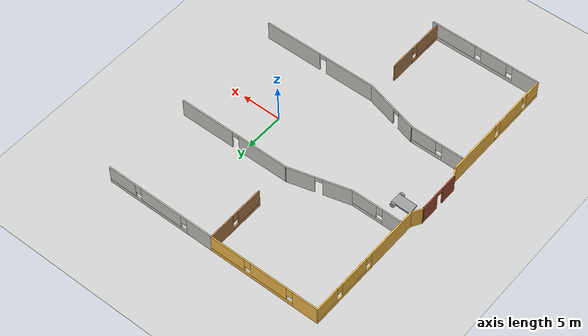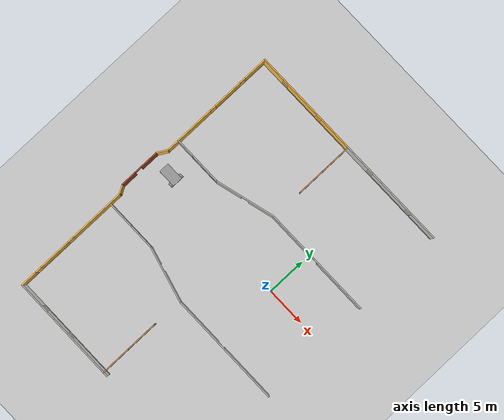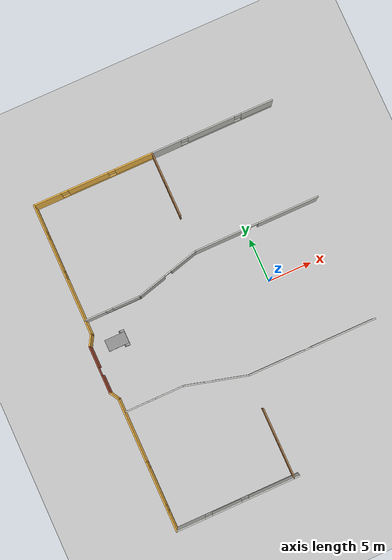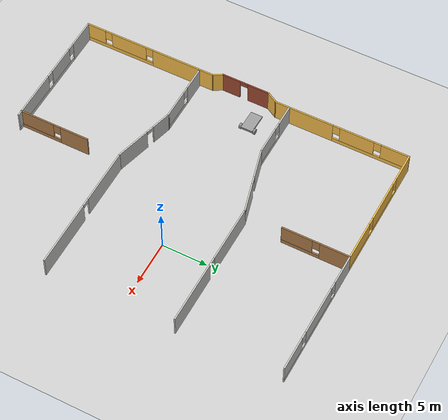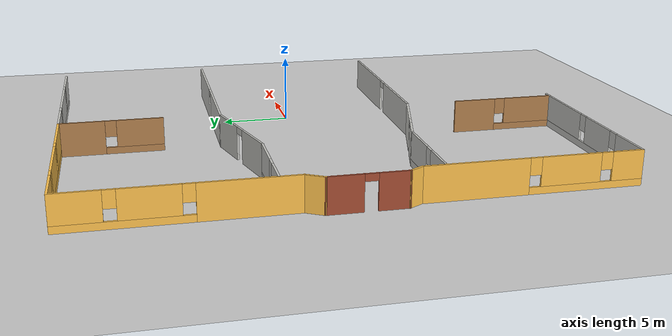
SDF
<sdf version="1.6">
 <world name="default">
  <model name="ground_plane">
   <static>1</static>
   <link name="link">
    <collision name="collision">
     <geometry><plane><normal>0 0 1</normal><size>100 100</size></plane></geometry>
     <surface><friction><ode><mu>100</mu><mu2>50</mu2></ode></friction></surface>
    </collision>
    <visual name="visual">
     <cast_shadows>0</cast_shadows>
     <geometry><plane><normal>0 0 1</normal><size>100 100</size></plane></geometry>
     <material>
      <script><uri>file://media/materials/scripts/gazebo.material</uri><name>Gazebo/Grey</name></script>
     </material>
    </visual>
   </link>
  </model>
  <model name="model">
   <pose>1.3797 -1.1711 0 0 -0 0</pose>
   <link name="Wall_22">
    <pose>-21.3175 -11.3683 0 0 0 -1.5708</pose>
    <visual name="Wall_22_Visual_0">
     <pose>-3.98783 0 1.25 0 -0 0</pose>
     <geometry><box><size>7.27435 0.15 2.5</size></box></geometry>
     <material>
      <script><uri>file://media/materials/scripts/gazebo.material</uri><name>Gazebo/Grey</name></script>
      <ambient>1 0.764706 0.305882 1</ambient>
     </material>
     <meta><layer>0</layer></meta>
    </visual>
    <collision name="Wall_22_Collision_0">
     <geometry><box><size>7.27435 0.15 2.5</size></box></geometry>
     <pose>-3.98783 0 1.25 0 -0 0</pose>
    </collision>
    <visual name="Wall_22_Visual_1">
     <pose>3.63717 0 0.25 0 -0 0</pose>
     <geometry><box><size>7.97565 0.15 0.5</size></box></geometry>
     <material>
      <script><uri>file://media/materials/scripts/gazebo.material</uri><name>Gazebo/Grey</name></script>
      <ambient>1 0.764706 0.305882 1</ambient>
     </material>
     <meta><layer>0</layer></meta>
    </visual>
    <collision name="Wall_22_Collision_1">
     <geometry><box><size>7.97565 0.15 0.5</size></box></geometry>
     <pose>3.63717 0 0.25 0 -0 0</pose>
    </collision>
    <visual name="Wall_22_Visual_2">
     <pose>2.53115 0 1.5 0 -0 0</pose>
     <geometry><box><size>4.16361 0.15 2</size></box></geometry>
     <material>
      <script><uri>file://media/materials/scripts/gazebo.material</uri><name>Gazebo/Grey</name></script>
      <ambient>1 0.764706 0.305882 1</ambient>
     </material>
     <meta><layer>0</layer></meta>
    </visual>
    <collision name="Wall_22_Collision_2">
     <geometry><box><size>4.16361 0.15 2</size></box></geometry>
     <pose>2.53115 0 1.5 0 -0 0</pose>
    </collision>
    <visual name="Wall_22_Visual_3">
     <pose>6.51898 0 1.5 0 -0 0</pose>
     <geometry><box><size>2.21204 0.15 2</size></box></geometry>
     <material>
      <script><uri>file://media/materials/scripts/gazebo.material</uri><name>Gazebo/Grey</name></script>
      <ambient>1 0.764706 0.305882 1</ambient>
     </material>
     <meta><layer>0</layer></meta>
    </visual>
    <collision name="Wall_22_Collision_3">
     <geometry><box><size>2.21204 0.15 2</size></box></geometry>
     <pose>6.51898 0 1.5 0 -0 0</pose>
    </collision>
    <visual name="Wall_22_Visual_4">
     <pose>0.049349 0 1.9 0 -0 0</pose>
     <geometry><box><size>0.8 0.15 1.2</size></box></geometry>
     <material>
      <script><uri>file://media/materials/scripts/gazebo.material</uri><name>Gazebo/Grey</name></script>
      <ambient>1 0.764706 0.305882 1</ambient>
     </material>
     <meta><layer>0</layer></meta>
    </visual>
    <collision name="Wall_22_Collision_4">
     <geometry><box><size>0.8 0.15 1.2</size></box></geometry>
     <pose>0.049349 0 1.9 0 -0 0</pose>
    </collision>
    <visual name="Wall_22_Visual_5">
     <pose>5.01296 0 1.9 0 -0 0</pose>
     <geometry><box><size>0.8 0.15 1.2</size></box></geometry>
     <material>
      <script><uri>file://media/materials/scripts/gazebo.material</uri><name>Gazebo/Grey</name></script>
      <ambient>1 0.764706 0.305882 1</ambient>
     </material>
     <meta><layer>0</layer></meta>
    </visual>
    <collision name="Wall_22_Collision_5">
     <geometry><box><size>0.8 0.15 1.2</size></box></geometry>
     <pose>5.01296 0 1.9 0 -0 0</pose>
    </collision>
   </link>
   <link name="Wall_23">
    <pose>-14.2675 -18.9183 0 0 -0 0</pose>
    <visual name="Wall_23_Visual_0">
     <pose>-5.44036 0 1.25 0 -0 0</pose>
     <geometry><box><size>3.36928 0.15 2.5</size></box></geometry>
     <material>
      <script><uri>file://media/materials/scripts/gazebo.material</uri><name>Gazebo/CeilingTiled</name></script>
      <ambient>1 0.764706 0.305882 1</ambient>
     </material>
     <meta><layer>0</layer></meta>
    </visual>
    <collision name="Wall_23_Collision_0">
     <geometry><box><size>3.36928 0.15 2.5</size></box></geometry>
     <pose>-5.44036 0 1.25 0 -0 0</pose>
    </collision>
    <visual name="Wall_23_Visual_1">
     <pose>1.68464 0 0.25 0 -0 0</pose>
     <geometry><box><size>10.8807 0.15 0.5</size></box></geometry>
     <material>
      <script><uri>file://media/materials/scripts/gazebo.material</uri><name>Gazebo/CeilingTiled</name></script>
      <ambient>1 0.764706 0.305882 1</ambient>
     </material>
     <meta><layer>0</layer></meta>
    </visual>
    <collision name="Wall_23_Collision_1">
     <geometry><box><size>10.8807 0.15 0.5</size></box></geometry>
     <pose>1.68464 0 0.25 0 -0 0</pose>
    </collision>
    <visual name="Wall_23_Visual_2">
     <pose>-1.24407 0 1.5 0 -0 0</pose>
     <geometry><box><size>3.42331 0.15 2</size></box></geometry>
     <material>
      <script><uri>file://media/materials/scripts/gazebo.material</uri><name>Gazebo/CeilingTiled</name></script>
      <ambient>1 0.764706 0.305882 1</ambient>
     </material>
     <meta><layer>0</layer></meta>
    </visual>
    <collision name="Wall_23_Collision_2">
     <geometry><box><size>3.42331 0.15 2</size></box></geometry>
     <pose>-1.24407 0 1.5 0 -0 0</pose>
    </collision>
    <visual name="Wall_23_Visual_3">
     <pose>4.19629 0 1.5 0 -0 0</pose>
     <geometry><box><size>5.85741 0.15 2</size></box></geometry>
     <material>
      <script><uri>file://media/materials/scripts/gazebo.material</uri><name>Gazebo/CeilingTiled</name></script>
      <ambient>1 0.764706 0.305882 1</ambient>
     </material>
     <meta><layer>0</layer></meta>
    </visual>
    <collision name="Wall_23_Collision_3">
     <geometry><box><size>5.85741 0.15 2</size></box></geometry>
     <pose>4.19629 0 1.5 0 -0 0</pose>
    </collision>
    <visual name="Wall_23_Visual_4">
     <pose>-3.35572 0 1.9 0 -0 0</pose>
     <geometry><box><size>0.8 0.15 1.2</size></box></geometry>
     <material>
      <script><uri>file://media/materials/scripts/gazebo.material</uri><name>Gazebo/CeilingTiled</name></script>
      <ambient>1 0.764706 0.305882 1</ambient>
     </material>
     <meta><layer>0</layer></meta>
    </visual>
    <collision name="Wall_23_Collision_4">
     <geometry><box><size>0.8 0.15 1.2</size></box></geometry>
     <pose>-3.35572 0 1.9 0 -0 0</pose>
    </collision>
    <visual name="Wall_23_Visual_5">
     <pose>0.867585 0 1.9 0 -0 0</pose>
     <geometry><box><size>0.8 0.15 1.2</size></box></geometry>
     <material>
      <script><uri>file://media/materials/scripts/gazebo.material</uri><name>Gazebo/CeilingTiled</name></script>
      <ambient>1 0.764706 0.305882 1</ambient>
     </material>
     <meta><layer>0</layer></meta>
    </visual>
    <collision name="Wall_23_Collision_5">
     <geometry><box><size>0.8 0.15 1.2</size></box></geometry>
     <pose>0.867585 0 1.9 0 -0 0</pose>
    </collision>
   </link>
   <link name="Wall_36">
    <collision name="Wall_36_Collision">
     <geometry><box><size>1.25 0.15 2.5</size></box></geometry>
     <pose>0 0 1.25 0 -0 0</pose>
    </collision>
    <visual name="Wall_36_Visual">
     <pose>0 0 1.25 0 -0 0</pose>
     <geometry><box><size>1.25 0.15 2.5</size></box></geometry>
     <material>
      <script><uri>file://media/materials/scripts/gazebo.material</uri><name>Gazebo/Grey</name></script>
      <ambient>1 0.764706 0.305882 1</ambient>
     </material>
     <meta><layer>0</layer></meta>
    </visual>
    <pose>-21.5925 -3.34197 0 0 -0 2.0944</pose>
   </link>
   <link name="Wall_37">
    <pose>-21.8675 -0.190651 0 0 -0 1.5708</pose>
    <visual name="Wall_37_Visual_0">
     <pose>-1.69498 0 1.25 0 -0 0</pose>
     <geometry><box><size>2.11003 0.15 2.5</size></box></geometry>
     <material>
      <script><uri>file://media/materials/scripts/gazebo.material</uri><name>Gazebo/Bricks</name></script>
      <ambient>1 1 1 1</ambient>
     </material>
     <meta><layer>0</layer></meta>
    </visual>
    <collision name="Wall_37_Collision_0">
     <geometry><box><size>2.11003 0.15 2.5</size></box></geometry>
     <pose>-1.69498 0 1.25 0 -0 0</pose>
    </collision>
    <visual name="Wall_37_Visual_1">
     <pose>1.50502 0 1.25 0 -0 0</pose>
     <geometry><box><size>2.48997 0.15 2.5</size></box></geometry>
     <material>
      <script><uri>file://media/materials/scripts/gazebo.material</uri><name>Gazebo/Bricks</name></script>
      <ambient>1 1 1 1</ambient>
     </material>
     <meta><layer>0</layer></meta>
    </visual>
    <collision name="Wall_37_Collision_1">
     <geometry><box><size>2.48997 0.15 2.5</size></box></geometry>
     <pose>1.50502 0 1.25 0 -0 0</pose>
    </collision>
    <visual name="Wall_37_Visual_2">
     <pose>-0.189968 0 2.25 0 -0 0</pose>
     <geometry><box><size>0.9 0.15 0.5</size></box></geometry>
     <material>
      <script><uri>file://media/materials/scripts/gazebo.material</uri><name>Gazebo/Bricks</name></script>
      <ambient>1 1 1 1</ambient>
     </material>
     <meta><layer>0</layer></meta>
    </visual>
    <collision name="Wall_37_Collision_2">
     <geometry><box><size>0.9 0.15 0.5</size></box></geometry>
     <pose>-0.189968 0 2.25 0 -0 0</pose>
    </collision>
   </link>
   <link name="Wall_38">
    <collision name="Wall_38_Collision">
     <geometry><box><size>1.5 0.15 2.5</size></box></geometry>
     <pose>0 0 1.25 0 -0 0</pose>
    </collision>
    <visual name="Wall_38_Visual">
     <pose>0 0 1.25 0 -0 0</pose>
     <geometry><box><size>1.5 0.15 2.5</size></box></geometry>
     <material>
      <script><uri>file://media/materials/scripts/gazebo.material</uri><name>Gazebo/Grey</name></script>
      <ambient>1 0.764706 0.305882 1</ambient>
     </material>
     <meta><layer>0</layer></meta>
    </visual>
    <pose>-21.53 3.06892 0 0 -0 1.0472</pose>
   </link>
   <link name="Wall_40">
    <pose>-21.1925 11.2035 0 0 -0 1.5708</pose>
    <visual name="Wall_40_Visual_0">
     <pose>-4.29734 0 1.25 0 -0 0</pose>
     <geometry><box><size>6.65533 0.15 2.5</size></box></geometry>
     <material>
      <script><uri>file://media/materials/scripts/gazebo.material</uri><name>Gazebo/Grey</name></script>
      <ambient>1 0.764706 0.305882 1</ambient>
     </material>
     <meta><layer>0</layer></meta>
    </visual>
    <collision name="Wall_40_Collision_0">
     <geometry><box><size>6.65533 0.15 2.5</size></box></geometry>
     <pose>-4.29734 0 1.25 0 -0 0</pose>
    </collision>
    <visual name="Wall_40_Visual_1">
     <pose>3.32766 0 0.25 0 -0 0</pose>
     <geometry><box><size>8.59467 0.15 0.5</size></box></geometry>
     <material>
      <script><uri>file://media/materials/scripts/gazebo.material</uri><name>Gazebo/Grey</name></script>
      <ambient>1 0.764706 0.305882 1</ambient>
     </material>
     <meta><layer>0</layer></meta>
    </visual>
    <collision name="Wall_40_Collision_1">
     <geometry><box><size>8.59467 0.15 0.5</size></box></geometry>
     <pose>3.32766 0 0.25 0 -0 0</pose>
    </collision>
    <visual name="Wall_40_Visual_2">
     <pose>1.74939 0 1.5 0 -0 0</pose>
     <geometry><box><size>3.83812 0.15 2</size></box></geometry>
     <material>
      <script><uri>file://media/materials/scripts/gazebo.material</uri><name>Gazebo/Grey</name></script>
      <ambient>1 0.764706 0.305882 1</ambient>
     </material>
     <meta><layer>0</layer></meta>
    </visual>
    <collision name="Wall_40_Collision_2">
     <geometry><box><size>3.83812 0.15 2</size></box></geometry>
     <pose>1.74939 0 1.5 0 -0 0</pose>
    </collision>
    <visual name="Wall_40_Visual_3">
     <pose>6.04673 0 1.5 0 -0 0</pose>
     <geometry><box><size>3.15655 0.15 2</size></box></geometry>
     <material>
      <script><uri>file://media/materials/scripts/gazebo.material</uri><name>Gazebo/Grey</name></script>
      <ambient>1 0.764706 0.305882 1</ambient>
     </material>
     <meta><layer>0</layer></meta>
    </visual>
    <collision name="Wall_40_Collision_3">
     <geometry><box><size>3.15655 0.15 2</size></box></geometry>
     <pose>6.04673 0 1.5 0 -0 0</pose>
    </collision>
    <visual name="Wall_40_Visual_4">
     <pose>-0.569674 0 1.9 0 -0 0</pose>
     <geometry><box><size>0.8 0.15 1.2</size></box></geometry>
     <material>
      <script><uri>file://media/materials/scripts/gazebo.material</uri><name>Gazebo/Grey</name></script>
      <ambient>1 0.764706 0.305882 1</ambient>
     </material>
     <meta><layer>0</layer></meta>
    </visual>
    <collision name="Wall_40_Collision_4">
     <geometry><box><size>0.8 0.15 1.2</size></box></geometry>
     <pose>-0.569674 0 1.9 0 -0 0</pose>
    </collision>
    <visual name="Wall_40_Visual_5">
     <pose>4.06845 0 1.9 0 -0 0</pose>
     <geometry><box><size>0.8 0.15 1.2</size></box></geometry>
     <material>
      <script><uri>file://media/materials/scripts/gazebo.material</uri><name>Gazebo/Grey</name></script>
      <ambient>1 0.764706 0.305882 1</ambient>
     </material>
     <meta><layer>0</layer></meta>
    </visual>
    <collision name="Wall_40_Collision_5">
     <geometry><box><size>0.8 0.15 1.2</size></box></geometry>
     <pose>4.06845 0 1.9 0 -0 0</pose>
    </collision>
   </link>
   <link name="Wall_51">
    <pose>-14.2675 18.7535 0 0 -0 0</pose>
    <visual name="Wall_51_Visual_0">
     <pose>-5.3786 0 1.25 0 -0 0</pose>
     <geometry><box><size>3.2428 0.15 2.5</size></box></geometry>
     <material>
      <script><uri>file://media/materials/scripts/gazebo.material</uri><name>Gazebo/Grey</name></script>
      <ambient>1 0.764706 0.305882 1</ambient>
     </material>
     <meta><layer>0</layer></meta>
    </visual>
    <collision name="Wall_51_Collision_0">
     <geometry><box><size>3.2428 0.15 2.5</size></box></geometry>
     <pose>-5.3786 0 1.25 0 -0 0</pose>
    </collision>
    <visual name="Wall_51_Visual_1">
     <pose>1.6214 0 0.25 0 -0 0</pose>
     <geometry><box><size>10.7572 0.15 0.5</size></box></geometry>
     <material>
      <script><uri>file://media/materials/scripts/gazebo.material</uri><name>Gazebo/Grey</name></script>
      <ambient>1 0.764706 0.305882 1</ambient>
     </material>
     <meta><layer>0</layer></meta>
    </visual>
    <collision name="Wall_51_Collision_1">
     <geometry><box><size>10.7572 0.15 0.5</size></box></geometry>
     <pose>1.6214 0 0.25 0 -0 0</pose>
    </collision>
    <visual name="Wall_51_Visual_2">
     <pose>-0.618681 0 1.5 0 -0 0</pose>
     <geometry><box><size>4.67704 0.15 2</size></box></geometry>
     <material>
      <script><uri>file://media/materials/scripts/gazebo.material</uri><name>Gazebo/Grey</name></script>
      <ambient>1 0.764706 0.305882 1</ambient>
     </material>
     <meta><layer>0</layer></meta>
    </visual>
    <collision name="Wall_51_Collision_2">
     <geometry><box><size>4.67704 0.15 2</size></box></geometry>
     <pose>-0.618681 0 1.5 0 -0 0</pose>
    </collision>
    <visual name="Wall_51_Visual_3">
     <pose>4.75992 0 1.5 0 -0 0</pose>
     <geometry><box><size>4.48016 0.15 2</size></box></geometry>
     <material>
      <script><uri>file://media/materials/scripts/gazebo.material</uri><name>Gazebo/Grey</name></script>
      <ambient>1 0.764706 0.305882 1</ambient>
     </material>
     <meta><layer>0</layer></meta>
    </visual>
    <collision name="Wall_51_Collision_3">
     <geometry><box><size>4.48016 0.15 2</size></box></geometry>
     <pose>4.75992 0 1.5 0 -0 0</pose>
    </collision>
    <visual name="Wall_51_Visual_4">
     <pose>-3.3572 0 1.9 0 -0 0</pose>
     <geometry><box><size>0.8 0.15 1.2</size></box></geometry>
     <material>
      <script><uri>file://media/materials/scripts/gazebo.material</uri><name>Gazebo/Grey</name></script>
      <ambient>1 0.764706 0.305882 1</ambient>
     </material>
     <meta><layer>0</layer></meta>
    </visual>
    <collision name="Wall_51_Collision_4">
     <geometry><box><size>0.8 0.15 1.2</size></box></geometry>
     <pose>-3.3572 0 1.9 0 -0 0</pose>
    </collision>
    <visual name="Wall_51_Visual_5">
     <pose>2.11984 0 1.9 0 -0 0</pose>
     <geometry><box><size>0.8 0.15 1.2</size></box></geometry>
     <material>
      <script><uri>file://media/materials/scripts/gazebo.material</uri><name>Gazebo/Grey</name></script>
      <ambient>1 0.764706 0.305882 1</ambient>
     </material>
     <meta><layer>0</layer></meta>
    </visual>
    <collision name="Wall_51_Collision_5">
     <geometry><box><size>0.8 0.15 1.2</size></box></geometry>
     <pose>2.11984 0 1.9 0 -0 0</pose>
    </collision>
   </link>
   <link name="Wall_52">
    <pose>-0.292493 18.7535 0 0 -0 0</pose>
    <visual name="Wall_52_Visual_0">
     <pose>-5.39608 0 1.25 0 -0 0</pose>
     <geometry><box><size>3.45785 0.15 2.5</size></box></geometry>
     <material>
      <script><uri>file://media/materials/scripts/gazebo.material</uri><name>Gazebo/CeilingTiled</name></script>
      <ambient>1 0.764706 0.305882 1</ambient>
     </material>
     <meta><layer>0</layer></meta>
    </visual>
    <collision name="Wall_52_Collision_0">
     <geometry><box><size>3.45785 0.15 2.5</size></box></geometry>
     <pose>-5.39608 0 1.25 0 -0 0</pose>
    </collision>
    <visual name="Wall_52_Visual_1">
     <pose>1.72892 0 0.25 0 -0 0</pose>
     <geometry><box><size>10.7922 0.15 0.5</size></box></geometry>
     <material>
      <script><uri>file://media/materials/scripts/gazebo.material</uri><name>Gazebo/CeilingTiled</name></script>
      <ambient>1 0.764706 0.305882 1</ambient>
     </material>
     <meta><layer>0</layer></meta>
    </visual>
    <collision name="Wall_52_Collision_1">
     <geometry><box><size>10.7922 0.15 0.5</size></box></geometry>
     <pose>1.72892 0 0.25 0 -0 0</pose>
    </collision>
    <visual name="Wall_52_Visual_2">
     <pose>-0.115746 0 1.5 0 -0 0</pose>
     <geometry><box><size>5.50281 0.15 2</size></box></geometry>
     <material>
      <script><uri>file://media/materials/scripts/gazebo.material</uri><name>Gazebo/CeilingTiled</name></script>
      <ambient>1 0.764706 0.305882 1</ambient>
     </material>
     <meta><layer>0</layer></meta>
    </visual>
    <collision name="Wall_52_Collision_2">
     <geometry><box><size>5.50281 0.15 2</size></box></geometry>
     <pose>-0.115746 0 1.5 0 -0 0</pose>
    </collision>
    <visual name="Wall_52_Visual_3">
     <pose>5.28033 0 1.5 0 -0 0</pose>
     <geometry><box><size>3.68934 0.15 2</size></box></geometry>
     <material>
      <script><uri>file://media/materials/scripts/gazebo.material</uri><name>Gazebo/CeilingTiled</name></script>
      <ambient>1 0.764706 0.305882 1</ambient>
     </material>
     <meta><layer>0</layer></meta>
    </visual>
    <collision name="Wall_52_Collision_3">
     <geometry><box><size>3.68934 0.15 2</size></box></geometry>
     <pose>5.28033 0 1.5 0 -0 0</pose>
    </collision>
    <visual name="Wall_52_Visual_4">
     <pose>-3.26715 0 1.9 0 -0 0</pose>
     <geometry><box><size>0.8 0.15 1.2</size></box></geometry>
     <material>
      <script><uri>file://media/materials/scripts/gazebo.material</uri><name>Gazebo/CeilingTiled</name></script>
      <ambient>1 0.764706 0.305882 1</ambient>
     </material>
     <meta><layer>0</layer></meta>
    </visual>
    <collision name="Wall_52_Collision_4">
     <geometry><box><size>0.8 0.15 1.2</size></box></geometry>
     <pose>-3.26715 0 1.9 0 -0 0</pose>
    </collision>
    <visual name="Wall_52_Visual_5">
     <pose>3.03566 0 1.9 0 -0 0</pose>
     <geometry><box><size>0.8 0.15 1.2</size></box></geometry>
     <material>
      <script><uri>file://media/materials/scripts/gazebo.material</uri><name>Gazebo/CeilingTiled</name></script>
      <ambient>1 0.764706 0.305882 1</ambient>
     </material>
     <meta><layer>0</layer></meta>
    </visual>
    <collision name="Wall_52_Collision_5">
     <geometry><box><size>0.8 0.15 1.2</size></box></geometry>
     <pose>3.03566 0 1.9 0 -0 0</pose>
    </collision>
   </link>
   <link name="Wall_55">
    <pose>-17.9939 5.2199 0 0 -0 0</pose>
    <visual name="Wall_55_Visual_0">
     <pose>-2.01287 0 1.25 0 -0 0</pose>
     <geometry><box><size>2.47427 0.15 2.5</size></box></geometry>
     <material>
      <script><uri>file://media/materials/scripts/gazebo.material</uri><name>Gazebo/CeilingTiled</name></script>
      <ambient>0.333333 0.666667 1 1</ambient>
     </material>
     <meta><layer>0</layer></meta>
    </visual>
    <collision name="Wall_55_Collision_0">
     <geometry><box><size>2.47427 0.15 2.5</size></box></geometry>
     <pose>-2.01287 0 1.25 0 -0 0</pose>
    </collision>
    <visual name="Wall_55_Visual_1">
     <pose>1.23714 0 0.25 0 -0 0</pose>
     <geometry><box><size>4.02573 0.15 0.5</size></box></geometry>
     <material>
      <script><uri>file://media/materials/scripts/gazebo.material</uri><name>Gazebo/CeilingTiled</name></script>
      <ambient>0.333333 0.666667 1 1</ambient>
     </material>
     <meta><layer>0</layer></meta>
    </visual>
    <collision name="Wall_55_Collision_1">
     <geometry><box><size>4.02573 0.15 0.5</size></box></geometry>
     <pose>1.23714 0 0.25 0 -0 0</pose>
    </collision>
    <visual name="Wall_55_Visual_2">
     <pose>1.63714 0 1.5 0 -0 0</pose>
     <geometry><box><size>3.22573 0.15 2</size></box></geometry>
     <material>
      <script><uri>file://media/materials/scripts/gazebo.material</uri><name>Gazebo/CeilingTiled</name></script>
      <ambient>0.333333 0.666667 1 1</ambient>
     </material>
     <meta><layer>0</layer></meta>
    </visual>
    <collision name="Wall_55_Collision_2">
     <geometry><box><size>3.22573 0.15 2</size></box></geometry>
     <pose>1.63714 0 1.5 0 -0 0</pose>
    </collision>
    <visual name="Wall_55_Visual_3">
     <pose>-0.37573 0 1.9 0 -0 0</pose>
     <geometry><box><size>0.8 0.15 1.2</size></box></geometry>
     <material>
      <script><uri>file://media/materials/scripts/gazebo.material</uri><name>Gazebo/CeilingTiled</name></script>
      <ambient>0.333333 0.666667 1 1</ambient>
     </material>
     <meta><layer>0</layer></meta>
    </visual>
    <collision name="Wall_55_Collision_3">
     <geometry><box><size>0.8 0.15 1.2</size></box></geometry>
     <pose>-0.37573 0 1.9 0 -0 0</pose>
    </collision>
   </link>
   <link name="Wall_56">
    <pose>-11.1483 6.20341 0 0 -0 0.261799</pose>
    <visual name="Wall_56_Visual_0">
     <pose>-2.15033 0 1.25 0 -0 0</pose>
     <geometry><box><size>3.44934 0.15 2.5</size></box></geometry>
     <material>
      <script><uri>file://media/materials/scripts/gazebo.material</uri><name>Gazebo/CeilingTiled</name></script>
      <ambient>0.333333 0.666667 1 1</ambient>
     </material>
     <meta><layer>0</layer></meta>
    </visual>
    <collision name="Wall_56_Collision_0">
     <geometry><box><size>3.44934 0.15 2.5</size></box></geometry>
     <pose>-2.15033 0 1.25 0 -0 0</pose>
    </collision>
    <visual name="Wall_56_Visual_1">
     <pose>2.17467 0 1.25 0 -0 0</pose>
     <geometry><box><size>3.40066 0.15 2.5</size></box></geometry>
     <material>
      <script><uri>file://media/materials/scripts/gazebo.material</uri><name>Gazebo/CeilingTiled</name></script>
      <ambient>0.333333 0.666667 1 1</ambient>
     </material>
     <meta><layer>0</layer></meta>
    </visual>
    <collision name="Wall_56_Collision_1">
     <geometry><box><size>3.40066 0.15 2.5</size></box></geometry>
     <pose>2.17467 0 1.25 0 -0 0</pose>
    </collision>
    <visual name="Wall_56_Visual_2">
     <pose>0.024343 0 2.25 0 -0 0</pose>
     <geometry><box><size>0.9 0.15 0.5</size></box></geometry>
     <material>
      <script><uri>file://media/materials/scripts/gazebo.material</uri><name>Gazebo/CeilingTiled</name></script>
      <ambient>0.333333 0.666667 1 1</ambient>
     </material>
     <meta><layer>0</layer></meta>
    </visual>
    <collision name="Wall_56_Collision_2">
     <geometry><box><size>0.9 0.15 0.5</size></box></geometry>
     <pose>0.024343 0 2.25 0 -0 0</pose>
    </collision>
   </link>
   <link name="Wall_57">
    <pose>-0.302825 7.18693 0 0 -0 0</pose>
    <visual name="Wall_57_Visual_0">
     <pose>-3.97135 0 1.25 0 -0 0</pose>
     <geometry><box><size>6.55729 0.15 2.5</size></box></geometry>
     <material>
      <script><uri>file://media/materials/scripts/gazebo.material</uri><name>Gazebo/CeilingTiled</name></script>
      <ambient>0.333333 0.666667 1 1</ambient>
     </material>
     <meta><layer>0</layer></meta>
    </visual>
    <collision name="Wall_57_Collision_0">
     <geometry><box><size>6.55729 0.15 2.5</size></box></geometry>
     <pose>-3.97135 0 1.25 0 -0 0</pose>
    </collision>
    <visual name="Wall_57_Visual_1">
     <pose>3.72865 0 1.25 0 -0 0</pose>
     <geometry><box><size>7.04271 0.15 2.5</size></box></geometry>
     <material>
      <script><uri>file://media/materials/scripts/gazebo.material</uri><name>Gazebo/CeilingTiled</name></script>
      <ambient>0.333333 0.666667 1 1</ambient>
     </material>
     <meta><layer>0</layer></meta>
    </visual>
    <collision name="Wall_57_Collision_1">
     <geometry><box><size>7.04271 0.15 2.5</size></box></geometry>
     <pose>3.72865 0 1.25 0 -0 0</pose>
    </collision>
    <visual name="Wall_57_Visual_2">
     <pose>-0.242707 0 2.25 0 -0 0</pose>
     <geometry><box><size>0.9 0.15 0.5</size></box></geometry>
     <material>
      <script><uri>file://media/materials/scripts/gazebo.material</uri><name>Gazebo/CeilingTiled</name></script>
      <ambient>0.333333 0.666667 1 1</ambient>
     </material>
     <meta><layer>0</layer></meta>
    </visual>
    <collision name="Wall_57_Collision_2">
     <geometry><box><size>0.9 0.15 0.5</size></box></geometry>
     <pose>-0.242707 0 2.25 0 -0 0</pose>
    </collision>
   </link>
   <link name="Wall_61">
    <pose>-17.7875 -5.35828 0 0 -0 0</pose>
    <visual name="Wall_61_Visual_0">
     <pose>-2.04403 0 1.25 0 -0 0</pose>
     <geometry><box><size>2.66193 0.15 2.5</size></box></geometry>
     <material>
      <script><uri>file://media/materials/scripts/gazebo.material</uri><name>Gazebo/CeilingTiled</name></script>
      <ambient>0.333333 0.666667 1 1</ambient>
     </material>
     <meta><layer>0</layer></meta>
    </visual>
    <collision name="Wall_61_Collision_0">
     <geometry><box><size>2.66193 0.15 2.5</size></box></geometry>
     <pose>-2.04403 0 1.25 0 -0 0</pose>
    </collision>
    <visual name="Wall_61_Visual_1">
     <pose>1.33097 0 0.25 0 -0 0</pose>
     <geometry><box><size>4.08807 0.15 0.5</size></box></geometry>
     <material>
      <script><uri>file://media/materials/scripts/gazebo.material</uri><name>Gazebo/CeilingTiled</name></script>
      <ambient>0.333333 0.666667 1 1</ambient>
     </material>
     <meta><layer>0</layer></meta>
    </visual>
    <collision name="Wall_61_Collision_1">
     <geometry><box><size>4.08807 0.15 0.5</size></box></geometry>
     <pose>1.33097 0 0.25 0 -0 0</pose>
    </collision>
    <visual name="Wall_61_Visual_2">
     <pose>1.73097 0 1.5 0 -0 0</pose>
     <geometry><box><size>3.28807 0.15 2</size></box></geometry>
     <material>
      <script><uri>file://media/materials/scripts/gazebo.material</uri><name>Gazebo/CeilingTiled</name></script>
      <ambient>0.333333 0.666667 1 1</ambient>
     </material>
     <meta><layer>0</layer></meta>
    </visual>
    <collision name="Wall_61_Collision_2">
     <geometry><box><size>3.28807 0.15 2</size></box></geometry>
     <pose>1.73097 0 1.5 0 -0 0</pose>
    </collision>
    <visual name="Wall_61_Visual_3">
     <pose>-0.313068 0 1.9 0 -0 0</pose>
     <geometry><box><size>0.8 0.15 1.2</size></box></geometry>
     <material>
      <script><uri>file://media/materials/scripts/gazebo.material</uri><name>Gazebo/CeilingTiled</name></script>
      <ambient>0.333333 0.666667 1 1</ambient>
     </material>
     <meta><layer>0</layer></meta>
    </visual>
    <collision name="Wall_61_Collision_3">
     <geometry><box><size>0.8 0.15 1.2</size></box></geometry>
     <pose>-0.313068 0 1.9 0 -0 0</pose>
    </collision>
   </link>
   <link name="Wall_62">
    <pose>-11.0585 -6.27709 0 0 0 -0.261799</pose>
    <visual name="Wall_62_Visual_0">
     <pose>-2.4588 0 1.25 0 -0 0</pose>
     <geometry><box><size>2.33239 0.15 2.5</size></box></geometry>
     <material>
      <script><uri>file://media/materials/scripts/gazebo.material</uri><name>Gazebo/CeilingTiled</name></script>
      <ambient>0.333333 0.666667 1 1</ambient>
     </material>
     <meta><layer>0</layer></meta>
    </visual>
    <collision name="Wall_62_Collision_0">
     <geometry><box><size>2.33239 0.15 2.5</size></box></geometry>
     <pose>-2.4588 0 1.25 0 -0 0</pose>
    </collision>
    <visual name="Wall_62_Visual_1">
     <pose>1.6162 0 1.25 0 -0 0</pose>
     <geometry><box><size>4.01761 0.15 2.5</size></box></geometry>
     <material>
      <script><uri>file://media/materials/scripts/gazebo.material</uri><name>Gazebo/CeilingTiled</name></script>
      <ambient>0.333333 0.666667 1 1</ambient>
     </material>
     <meta><layer>0</layer></meta>
    </visual>
    <collision name="Wall_62_Collision_1">
     <geometry><box><size>4.01761 0.15 2.5</size></box></geometry>
     <pose>1.6162 0 1.25 0 -0 0</pose>
    </collision>
    <visual name="Wall_62_Visual_2">
     <pose>-0.842608 0 2.25 0 -0 0</pose>
     <geometry><box><size>0.9 0.15 0.5</size></box></geometry>
     <material>
      <script><uri>file://media/materials/scripts/gazebo.material</uri><name>Gazebo/CeilingTiled</name></script>
      <ambient>0.333333 0.666667 1 1</ambient>
     </material>
     <meta><layer>0</layer></meta>
    </visual>
    <collision name="Wall_62_Collision_2">
     <geometry><box><size>0.9 0.15 0.5</size></box></geometry>
     <pose>-0.842608 0 2.25 0 -0 0</pose>
    </collision>
   </link>
   <link name="Wall_63">
    <pose>-0.331362 -7.19589 0 0 -0 0</pose>
    <visual name="Wall_63_Visual_0">
     <pose>-4.17243 0 1.25 0 -0 0</pose>
     <geometry><box><size>6.40125 0.15 2.5</size></box></geometry>
     <material>
      <script><uri>file://media/materials/scripts/gazebo.material</uri><name>Gazebo/CeilingTiled</name></script>
      <ambient>0.333333 0.666667 1 1</ambient>
     </material>
     <meta><layer>0</layer></meta>
    </visual>
    <collision name="Wall_63_Collision_0">
     <geometry><box><size>6.40125 0.15 2.5</size></box></geometry>
     <pose>-4.17243 0 1.25 0 -0 0</pose>
    </collision>
    <visual name="Wall_63_Visual_1">
     <pose>3.65062 0 1.25 0 -0 0</pose>
     <geometry><box><size>7.44487 0.15 2.5</size></box></geometry>
     <material>
      <script><uri>file://media/materials/scripts/gazebo.material</uri><name>Gazebo/CeilingTiled</name></script>
      <ambient>0.333333 0.666667 1 1</ambient>
     </material>
     <meta><layer>0</layer></meta>
    </visual>
    <collision name="Wall_63_Collision_1">
     <geometry><box><size>7.44487 0.15 2.5</size></box></geometry>
     <pose>3.65062 0 1.25 0 -0 0</pose>
    </collision>
    <visual name="Wall_63_Visual_2">
     <pose>-0.52181 0 2.25 0 -0 0</pose>
     <geometry><box><size>0.9 0.15 0.5</size></box></geometry>
     <material>
      <script><uri>file://media/materials/scripts/gazebo.material</uri><name>Gazebo/CeilingTiled</name></script>
      <ambient>0.333333 0.666667 1 1</ambient>
     </material>
     <meta><layer>0</layer></meta>
    </visual>
    <collision name="Wall_63_Collision_2">
     <geometry><box><size>0.9 0.15 0.5</size></box></geometry>
     <pose>-0.52181 0 2.25 0 -0 0</pose>
    </collision>
   </link>
   <link name="Wall_73">
    <pose>-7.76956 -15.0131 0 0 0 -1.5708</pose>
    <visual name="Wall_73_Visual_0">
     <pose>-2.37032 0 1.25 0 -0 0</pose>
     <geometry><box><size>3.25936 0.15 2.5</size></box></geometry>
     <material>
      <script><uri>file://media/materials/scripts/gazebo.material</uri><name>Gazebo/Wood</name></script>
      <ambient>1 1 1 1</ambient>
     </material>
     <meta><layer>0</layer></meta>
    </visual>
    <collision name="Wall_73_Collision_0">
     <geometry><box><size>3.25936 0.15 2.5</size></box></geometry>
     <pose>-2.37032 0 1.25 0 -0 0</pose>
    </collision>
    <visual name="Wall_73_Visual_1">
     <pose>1.62968 0 0.25 0 -0 0</pose>
     <geometry><box><size>4.74064 0.15 0.5</size></box></geometry>
     <material>
      <script><uri>file://media/materials/scripts/gazebo.material</uri><name>Gazebo/Wood</name></script>
      <ambient>1 1 1 1</ambient>
     </material>
     <meta><layer>0</layer></meta>
    </visual>
    <collision name="Wall_73_Collision_1">
     <geometry><box><size>4.74064 0.15 0.5</size></box></geometry>
     <pose>1.62968 0 0.25 0 -0 0</pose>
    </collision>
    <visual name="Wall_73_Visual_2">
     <pose>2.02968 0 1.5 0 -0 0</pose>
     <geometry><box><size>3.94064 0.15 2</size></box></geometry>
     <material>
      <script><uri>file://media/materials/scripts/gazebo.material</uri><name>Gazebo/Wood</name></script>
      <ambient>1 1 1 1</ambient>
     </material>
     <meta><layer>0</layer></meta>
    </visual>
    <collision name="Wall_73_Collision_2">
     <geometry><box><size>3.94064 0.15 2</size></box></geometry>
     <pose>2.02968 0 1.5 0 -0 0</pose>
    </collision>
    <visual name="Wall_73_Visual_3">
     <pose>-0.340641 0 1.9 0 -0 0</pose>
     <geometry><box><size>0.8 0.15 1.2</size></box></geometry>
     <material>
      <script><uri>file://media/materials/scripts/gazebo.material</uri><name>Gazebo/Wood</name></script>
      <ambient>1 1 1 1</ambient>
     </material>
     <meta><layer>0</layer></meta>
    </visual>
    <collision name="Wall_73_Collision_3">
     <geometry><box><size>0.8 0.15 1.2</size></box></geometry>
     <pose>-0.340641 0 1.9 0 -0 0</pose>
    </collision>
   </link>
   <link name="Wall_80">
    <pose>-7.34249 15.0785 0 0 0 -1.5708</pose>
    <visual name="Wall_80_Visual_0">
     <pose>-2.09249 0 1.25 0 -0 0</pose>
     <geometry><box><size>3.31501 0.15 2.5</size></box></geometry>
     <material>
      <script><uri>file://media/materials/scripts/gazebo.material</uri><name>Gazebo/Wood</name></script>
      <ambient>1 1 1 1</ambient>
     </material>
     <meta><layer>0</layer></meta>
    </visual>
    <collision name="Wall_80_Collision_0">
     <geometry><box><size>3.31501 0.15 2.5</size></box></geometry>
     <pose>-2.09249 0 1.25 0 -0 0</pose>
    </collision>
    <visual name="Wall_80_Visual_1">
     <pose>1.65751 0 0.25 0 -0 0</pose>
     <geometry><box><size>4.18499 0.15 0.5</size></box></geometry>
     <material>
      <script><uri>file://media/materials/scripts/gazebo.material</uri><name>Gazebo/Wood</name></script>
      <ambient>1 1 1 1</ambient>
     </material>
     <meta><layer>0</layer></meta>
    </visual>
    <collision name="Wall_80_Collision_1">
     <geometry><box><size>4.18499 0.15 0.5</size></box></geometry>
     <pose>1.65751 0 0.25 0 -0 0</pose>
    </collision>
    <visual name="Wall_80_Visual_2">
     <pose>2.05751 0 1.5 0 -0 0</pose>
     <geometry><box><size>3.38498 0.15 2</size></box></geometry>
     <material>
      <script><uri>file://media/materials/scripts/gazebo.material</uri><name>Gazebo/Wood</name></script>
      <ambient>1 1 1 1</ambient>
     </material>
     <meta><layer>0</layer></meta>
    </visual>
    <collision name="Wall_80_Collision_2">
     <geometry><box><size>3.38498 0.15 2</size></box></geometry>
     <pose>2.05751 0 1.5 0 -0 0</pose>
    </collision>
    <visual name="Wall_80_Visual_3">
     <pose>-0.034985 0 1.9 0 -0 0</pose>
     <geometry><box><size>0.8 0.15 1.2</size></box></geometry>
     <material>
      <script><uri>file://media/materials/scripts/gazebo.material</uri><name>Gazebo/Wood</name></script>
      <ambient>1 1 1 1</ambient>
     </material>
     <meta><layer>0</layer></meta>
    </visual>
    <collision name="Wall_80_Collision_3">
     <geometry><box><size>0.8 0.15 1.2</size></box></geometry>
     <pose>-0.034985 0 1.9 0 -0 0</pose>
    </collision>
   </link>
   <static>1</static>
  </model>
  <model name="model_0">
   <link name="link_0">
    <pose>-0.19595 -0.00375 0.075 0 -0 0</pose>
    <inertial>
     <mass>0.704211</mass>
     <inertia>
      <ixx>0.105994</ixx>
      <ixy>0</ixy>
      <ixz>0</ixz>
      <iyy>0.331912</iyy>
      <iyz>0</iyz>
      <izz>0.431992</izz>
     </inertia>
    </inertial>
    <visual name="visual">
     <geometry><box><size>2.36759 1.32504 0.224451</size></box></geometry>
     <material>
      <lighting>1</lighting>
      <script><uri>file://media/materials/scripts/gazebo.material</uri><name>Gazebo/Grey</name></script>
      <ambient>0.3 0.3 0.3 1</ambient>
      <diffuse>0.7 0.7 0.7 1</diffuse>
      <specular>0.01 0.01 0.01 1</specular>
      <emissive>0 0 0 1</emissive>
      <shader type="vertex"><normal_map>__default__</normal_map></shader>
     </material>
    </visual>
    <collision name="collision">
     <geometry><box><size>2.36759 1.32504 0.224451</size></box></geometry>
     <surface>
      <friction>
       <ode><mu>1</mu><mu2>1</mu2><fdir1>0 0 0</fdir1><slip1>0</slip1><slip2>0</slip2></ode>
       <torsional>
        <coefficient>1</coefficient>
        <patch_radius>0</patch_radius>
        <surface_radius>0</surface_radius>
        <use_patch_radius>1</use_patch_radius>
        <ode><slip>0</slip></ode>
       </torsional>
      </friction>
      <bounce><restitution_coefficient>0</restitution_coefficient><threshold>1e+06</threshold></bounce>
      <contact>
       <collide_without_contact>0</collide_without_contact>
       <collide_without_contact_bitmask>1</collide_without_contact_bitmask>
       <collide_bitmask>1</collide_bitmask>
       <ode>
        <soft_cfm>0</soft_cfm>
        <soft_erp>0.2</soft_erp>
        <kp>1e+13</kp>
        <kd>1</kd>
        <max_vel>0.01</max_vel>
        <min_depth>0</min_depth>
       </ode>
       <bullet>
        <split_impulse>1</split_impulse>
        <split_impulse_penetration_threshold>-0.01</split_impulse_penetration_threshold>
        <soft_cfm>0</soft_cfm>
        <soft_erp>0.2</soft_erp>
        <kp>1e+13</kp>
        <kd>1</kd>
       </bullet>
      </contact>
     </surface>
    </collision>
   </link>
   <link name="link_1">
    <pose>0.687847 0.7988 -0.025 1.5707 -0 0</pose>
    <inertial>
     <mass>1</mass>
     <inertia><ixx>0.145833</ixx><ixy>0</ixy><ixz>0</ixz><iyy>0.145833</iyy><iyz>0</iyz><izz>0.125</izz></inertia>
    </inertial>
    <visual name="visual">
     <geometry><cylinder><radius>0.3</radius><length>0.25</length></cylinder></geometry>
     <material>
      <lighting>1</lighting>
      <script><uri>file://media/materials/scripts/gazebo.material</uri><name>Gazebo/Grey</name></script>
      <ambient>0.3 0.3 0.3 1</ambient>
      <diffuse>0.7 0.7 0.7 1</diffuse>
      <specular>0.01 0.01 0.01 1</specular>
      <emissive>0 0 0 1</emissive>
      <shader type="vertex"><normal_map>__default__</normal_map></shader>
     </material>
    </visual>
    <collision name="collision">
     <geometry><cylinder><radius>0.3</radius><length>0.25</length></cylinder></geometry>
     <surface>
      <friction>
       <ode><mu>1</mu><mu2>1</mu2><fdir1>0 0 0</fdir1><slip1>0</slip1><slip2>0</slip2></ode>
       <torsional>
        <coefficient>1</coefficient>
        <patch_radius>0</patch_radius>
        <surface_radius>0</surface_radius>
        <use_patch_radius>1</use_patch_radius>
        <ode><slip>0</slip></ode>
       </torsional>
      </friction>
      <bounce><restitution_coefficient>0</restitution_coefficient><threshold>1e+06</threshold></bounce>
      <contact>
       <collide_without_contact>0</collide_without_contact>
       <collide_without_contact_bitmask>1</collide_without_contact_bitmask>
       <collide_bitmask>1</collide_bitmask>
       <ode>
        <soft_cfm>0</soft_cfm>
        <soft_erp>0.2</soft_erp>
        <kp>1e+13</kp>
        <kd>1</kd>
        <max_vel>0.01</max_vel>
        <min_depth>0</min_depth>
       </ode>
       <bullet>
        <split_impulse>1</split_impulse>
        <split_impulse_penetration_threshold>-0.01</split_impulse_penetration_threshold>
        <soft_cfm>0</soft_cfm>
        <soft_erp>0.2</soft_erp>
        <kp>1e+13</kp>
        <kd>1</kd>
       </bullet>
      </contact>
     </surface>
    </collision>
   </link>
   <link name="link_1_clone">
    <pose>0.687847 -0.7913 -0.025 1.5707 -0 0</pose>
    <inertial>
     <mass>1</mass>
     <inertia><ixx>0.145833</ixx><ixy>0</ixy><ixz>0</ixz><iyy>0.145833</iyy><iyz>0</iyz><izz>0.125</izz></inertia>
    </inertial>
    <visual name="visual">
     <geometry><cylinder><radius>0.3</radius><length>0.25</length></cylinder></geometry>
     <material>
      <lighting>1</lighting>
      <script><uri>file://media/materials/scripts/gazebo.material</uri><name>Gazebo/Grey</name></script>
      <ambient>0.3 0.3 0.3 1</ambient>
      <diffuse>0.7 0.7 0.7 1</diffuse>
      <specular>0.01 0.01 0.01 1</specular>
      <emissive>0 0 0 1</emissive>
      <shader type="vertex"><normal_map>__default__</normal_map></shader>
     </material>
    </visual>
    <collision name="collision">
     <geometry><cylinder><radius>0.3</radius><length>0.25</length></cylinder></geometry>
     <surface>
      <friction>
       <ode><mu>1</mu><mu2>1</mu2><fdir1>0 0 0</fdir1><slip1>0</slip1><slip2>0</slip2></ode>
       <torsional>
        <coefficient>1</coefficient>
        <patch_radius>0</patch_radius>
        <surface_radius>0</surface_radius>
        <use_patch_radius>1</use_patch_radius>
        <ode><slip>0</slip></ode>
       </torsional>
      </friction>
      <bounce><restitution_coefficient>0</restitution_coefficient><threshold>1e+06</threshold></bounce>
      <contact>
       <collide_without_contact>0</collide_without_contact>
       <collide_without_contact_bitmask>1</collide_without_contact_bitmask>
       <collide_bitmask>1</collide_bitmask>
       <ode>
        <soft_cfm>0</soft_cfm>
        <soft_erp>0.2</soft_erp>
        <kp>1e+13</kp>
        <kd>1</kd>
        <max_vel>0.01</max_vel>
        <min_depth>0</min_depth>
       </ode>
       <bullet>
        <split_impulse>1</split_impulse>
        <split_impulse_penetration_threshold>-0.01</split_impulse_penetration_threshold>
        <soft_cfm>0</soft_cfm>
        <soft_erp>0.2</soft_erp>
        <kp>1e+13</kp>
        <kd>1</kd>
       </bullet>
      </contact>
     </surface>
    </collision>
   </link>
   <link name="link_2">
    <pose>-1.17975 -0.00375 -0.025 0 -0 0</pose>
    <inertial>
     <mass>1</mass>
     <inertia><ixx>0.1</ixx><ixy>0</ixy><ixz>0</ixz><iyy>0.1</iyy><iyz>0</iyz><izz>0.1</izz></inertia>
    </inertial>
    <visual name="visual">
     <geometry><sphere><radius>0.2</radius></sphere></geometry>
     <material>
      <lighting>1</lighting>
      <script><uri>file://media/materials/scripts/gazebo.material</uri><name>Gazebo/Grey</name></script>
      <ambient>0.3 0.3 0.3 1</ambient>
      <diffuse>0.7 0.7 0.7 1</diffuse>
      <specular>0.01 0.01 0.01 1</specular>
      <emissive>0 0 0 1</emissive>
      <shader type="vertex"><normal_map>__default__</normal_map></shader>
     </material>
    </visual>
    <collision name="collision">
     <geometry><sphere><radius>0.2</radius></sphere></geometry>
     <surface>
      <friction>
       <ode><mu>1</mu><mu2>1</mu2><fdir1>0 0 0</fdir1><slip1>0</slip1><slip2>0</slip2></ode>
       <torsional>
        <coefficient>1</coefficient>
        <patch_radius>0</patch_radius>
        <surface_radius>0</surface_radius>
        <use_patch_radius>1</use_patch_radius>
        <ode><slip>0</slip></ode>
       </torsional>
      </friction>
      <bounce><restitution_coefficient>0</restitution_coefficient><threshold>1e+06</threshold></bounce>
      <contact>
       <collide_without_contact>0</collide_without_contact>
       <collide_without_contact_bitmask>1</collide_without_contact_bitmask>
       <collide_bitmask>1</collide_bitmask>
       <ode>
        <soft_cfm>0</soft_cfm>
        <soft_erp>0.2</soft_erp>
        <kp>1e+13</kp>
        <kd>1</kd>
        <max_vel>0.01</max_vel>
        <min_depth>0</min_depth>
       </ode>
       <bullet>
        <split_impulse>1</split_impulse>
        <split_impulse_penetration_threshold>-0.01</split_impulse_penetration_threshold>
        <soft_cfm>0</soft_cfm>
        <soft_erp>0.2</soft_erp>
        <kp>1e+13</kp>
        <kd>1</kd>
       </bullet>
      </contact>
     </surface>
    </collision>
   </link>
   <joint name="link_0_JOINT_5" type="revolute">
    <parent>link_0</parent>
    <child>link_1</child>
    <axis>
     <xyz>0 0 1</xyz>
     <use_parent_model_frame>0</use_parent_model_frame>
     <limit>
      <lower>-1.79769e+308</lower>
      <upper>1.79769e+308</upper>
      <effort>-1</effort>
      <velocity>-1</velocity>
     </limit>
     <dynamics>
      <spring_reference>0</spring_reference>
      <spring_stiffness>0</spring_stiffness>
      <damping>0</damping>
     </dynamics>
    </axis>
    <physics>
     <ode><limit><cfm>0</cfm><erp>0.2</erp></limit><suspension><cfm>0</cfm><erp>0.2</erp></suspension></ode>
    </physics>
   </joint>
   <joint name="link_0_JOINT_6" type="revolute">
    <parent>link_0</parent>
    <child>link_1_clone</child>
    <axis>
     <xyz>0 0 1</xyz>
     <use_parent_model_frame>0</use_parent_model_frame>
     <limit>
      <lower>-1.79769e+308</lower>
      <upper>1.79769e+308</upper>
      <effort>-1</effort>
      <velocity>-1</velocity>
     </limit>
     <dynamics>
      <spring_reference>0</spring_reference>
      <spring_stiffness>0</spring_stiffness>
      <damping>0</damping>
     </dynamics>
    </axis>
    <physics>
     <ode><limit><cfm>0</cfm><erp>0.2</erp></limit><suspension><cfm>0</cfm><erp>0.2</erp></suspension></ode>
    </physics>
   </joint>
   <joint name="link_0_JOINT_7" type="ball">
    <parent>link_0</parent>
    <child>link_2</child>
    <physics>
     <ode><limit><cfm>0</cfm><erp>0.2</erp></limit><suspension><cfm>0</cfm><erp>0.2</erp></suspension></ode>
    </physics>
   </joint>
   <static>0</static>
   <pose>-17.5322 0.777242 0.288141 0 -0.053577 0.002049</pose>
  </model>
 </world>
</sdf>
